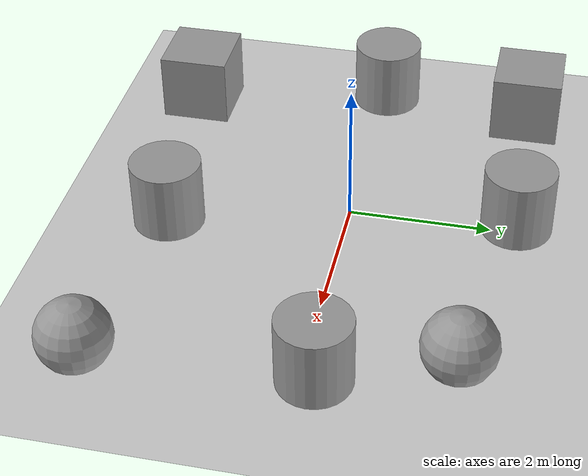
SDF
<sdf version="1.6">
 <world name="default">
  <scene><ambient>0.4 0.4 0.4 1</ambient><background>0.7 0.7 0.7 1</background><shadows>1</shadows></scene>
  <light name="sun" type="directional">
   <pose>0 0 10 0 -0 0</pose>
   <diffuse>0.8 0.8 0.8 1</diffuse>
   <specular>0.2 0.2 0.2 1</specular>
   <attenuation>
    <range>1000</range>
    <constant>0.9</constant>
    <linear>0.01</linear>
    <quadratic>0.001</quadratic>
   </attenuation>
   <direction>-0.5 0.1 -0.9</direction>
  </light>
  <model name="ground_plane">
   <static>1</static>
   <link name="link">
    <collision name="collision">
     <geometry><plane><normal>0 0 1</normal><size>100 100</size></plane></geometry>
     <surface><friction><ode><mu>100</mu><mu2>50</mu2></ode></friction></surface>
    </collision>
    <visual name="visual">
     <cast_shadows>0</cast_shadows>
     <geometry><plane><normal>0 0 1</normal><size>100 100</size></plane></geometry>
     <material>
      <script><uri>file://media/materials/scripts/gazebo.material</uri><name>Gazebo/Grey</name></script>
     </material>
    </visual>
   </link>
  </model>
  <physics name="default_physics" default="0" type="ode">
   <real_time_update_rate>1000</real_time_update_rate>
   <max_step_size>0.001</max_step_size>
   <real_time_factor>1</real_time_factor>
   <ode>
    <solver>
     <type>quick</type>
     <iters>150</iters>
     <precon_iters>0</precon_iters>
     <sor>1.4</sor>
     <use_dynamic_moi_rescaling>1</use_dynamic_moi_rescaling>
    </solver>
    <constraints>
     <cfm>1e-05</cfm>
     <erp>0.2</erp>
     <contact_max_correcting_vel>2000</contact_max_correcting_vel>
     <contact_surface_layer>0.01</contact_surface_layer>
    </constraints>
   </ode>
  </physics>
  <gravity>0 0 -9.8</gravity>
  <magnetic_field>6e-06 2.3e-05 -4.2e-05</magnetic_field>
  <atmosphere type="adiabatic"/>
  <spherical_coordinates>
   <surface_model>EARTH_WGS84</surface_model>
   <latitude_deg>0</latitude_deg>
   <longitude_deg>0</longitude_deg>
   <elevation>0</elevation>
   <heading_deg>0</heading_deg>
  </spherical_coordinates>
  <model name="unit_box">
   <pose>-2.7443 2.2253 0.5 0 -0 0</pose>
   <link name="link">
    <inertial>
     <mass>1</mass>
     <inertia>
      <ixx>0.166667</ixx>
      <ixy>0</ixy>
      <ixz>0</ixz>
      <iyy>0.166667</iyy>
      <iyz>0</iyz>
      <izz>0.166667</izz>
     </inertia>
    </inertial>
    <collision name="collision"><geometry><box><size>1 1 1</size></box></geometry></collision>
    <visual name="visual">
     <geometry><box><size>1 1 1</size></box></geometry>
     <material>
      <script><name>Gazebo/Grey</name><uri>file://media/materials/scripts/gazebo.material</uri></script>
     </material>
    </visual>
   </link>
  </model>
  <model name="unit_box_0">
   <pose>-2.31899 -2.79333 0.5 0 -0 0</pose>
   <link name="link">
    <inertial>
     <mass>1</mass>
     <inertia>
      <ixx>0.166667</ixx>
      <ixy>0</ixy>
      <ixz>0</ixz>
      <iyy>0.166667</iyy>
      <iyz>0</iyz>
      <izz>0.166667</izz>
     </inertia>
    </inertial>
    <collision name="collision"><geometry><box><size>1 1 1</size></box></geometry></collision>
    <visual name="visual">
     <geometry><box><size>1 1 1</size></box></geometry>
     <material>
      <script><name>Gazebo/Grey</name><uri>file://media/materials/scripts/gazebo.material</uri></script>
     </material>
    </visual>
   </link>
  </model>
  <model name="unit_sphere">
   <pose>2.90299 1.91891 0.5 0 -0 0</pose>
   <link name="link">
    <inertial>
     <mass>1</mass>
     <inertia><ixx>0.1</ixx><ixy>0</ixy><ixz>0</ixz><iyy>0.1</iyy><iyz>0</iyz><izz>0.1</izz></inertia>
    </inertial>
    <collision name="collision"><geometry><sphere><radius>0.5</radius></sphere></geometry></collision>
    <visual name="visual">
     <geometry><sphere><radius>0.5</radius></sphere></geometry>
     <material>
      <script><name>Gazebo/Grey</name><uri>file://media/materials/scripts/gazebo.material</uri></script>
     </material>
    </visual>
   </link>
  </model>
  <model name="unit_sphere_0">
   <pose>3.66871 -2.72981 0.5 0 -0 0</pose>
   <link name="link">
    <inertial>
     <mass>1</mass>
     <inertia><ixx>0.1</ixx><ixy>0</ixy><ixz>0</ixz><iyy>0.1</iyy><iyz>0</iyz><izz>0.1</izz></inertia>
    </inertial>
    <collision name="collision"><geometry><sphere><radius>0.5</radius></sphere></geometry></collision>
    <visual name="visual">
     <geometry><sphere><radius>0.5</radius></sphere></geometry>
     <material>
      <script><name>Gazebo/Grey</name><uri>file://media/materials/scripts/gazebo.material</uri></script>
     </material>
    </visual>
   </link>
  </model>
  <model name="unit_cylinder">
   <pose>0.670091 -2.46065 0.499993 4e-06 4e-06 -0</pose>
   <link name="link">
    <inertial>
     <mass>1</mass>
     <inertia><ixx>0.145833</ixx><ixy>0</ixy><ixz>0</ixz><iyy>0.145833</iyy><iyz>0</iyz><izz>0.125</izz></inertia>
    </inertial>
    <collision name="collision">
     <geometry><cylinder><radius>0.5</radius><length>1</length></cylinder></geometry>
    </collision>
    <visual name="visual">
     <geometry><cylinder><radius>0.5</radius><length>1</length></cylinder></geometry>
     <material>
      <script><name>Gazebo/Grey</name><uri>file://media/materials/scripts/gazebo.material</uri></script>
     </material>
    </visual>
   </link>
  </model>
  <model name="unit_cylinder_0">
   <pose>-0.131901 2.33745 0.499997 -4e-06 -4e-06 -0</pose>
   <link name="link">
    <inertial>
     <mass>1</mass>
     <inertia><ixx>0.145833</ixx><ixy>0</ixy><ixz>0</ixz><iyy>0.145833</iyy><iyz>0</iyz><izz>0.125</izz></inertia>
    </inertial>
    <collision name="collision">
     <geometry><cylinder><radius>0.5</radius><length>1</length></cylinder></geometry>
    </collision>
    <visual name="visual">
     <geometry><cylinder><radius>0.5</radius><length>1</length></cylinder></geometry>
     <material>
      <script><name>Gazebo/Grey</name><uri>file://media/materials/scripts/gazebo.material</uri></script>
     </material>
    </visual>
   </link>
  </model>
  <model name="unit_cylinder_1">
   <pose>-2.98528 0.02171 0.499993 4e-06 4e-06 -0</pose>
   <link name="link">
    <inertial>
     <mass>1</mass>
     <inertia><ixx>0.145833</ixx><ixy>0</ixy><ixz>0</ixz><iyy>0.145833</iyy><iyz>0</iyz><izz>0.125</izz></inertia>
    </inertial>
    <collision name="collision">
     <geometry><cylinder><radius>0.5</radius><length>1</length></cylinder></geometry>
    </collision>
    <visual name="visual">
     <geometry><cylinder><radius>0.5</radius><length>1</length></cylinder></geometry>
     <material>
      <script><name>Gazebo/Grey</name><uri>file://media/materials/scripts/gazebo.material</uri></script>
     </material>
    </visual>
   </link>
  </model>
  <model name="unit_cylinder_2">
   <pose>3.33623 0.204079 0.499997 -4e-06 -4e-06 -0</pose>
   <link name="link">
    <inertial>
     <mass>1</mass>
     <inertia><ixx>0.145833</ixx><ixy>0</ixy><ixz>0</ixz><iyy>0.145833</iyy><iyz>0</iyz><izz>0.125</izz></inertia>
    </inertial>
    <collision name="collision">
     <geometry><cylinder><radius>0.5</radius><length>1</length></cylinder></geometry>
    </collision>
    <visual name="visual">
     <geometry><cylinder><radius>0.5</radius><length>1</length></cylinder></geometry>
     <material>
      <script><name>Gazebo/Grey</name><uri>file://media/materials/scripts/gazebo.material</uri></script>
     </material>
    </visual>
   </link>
  </model>
 </world>
</sdf>
